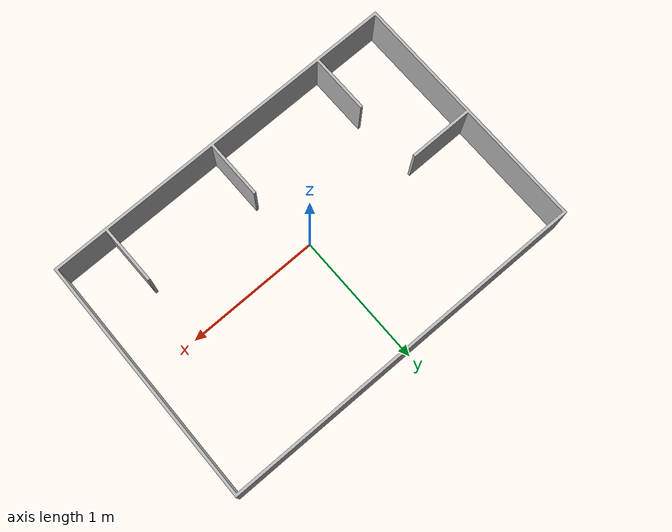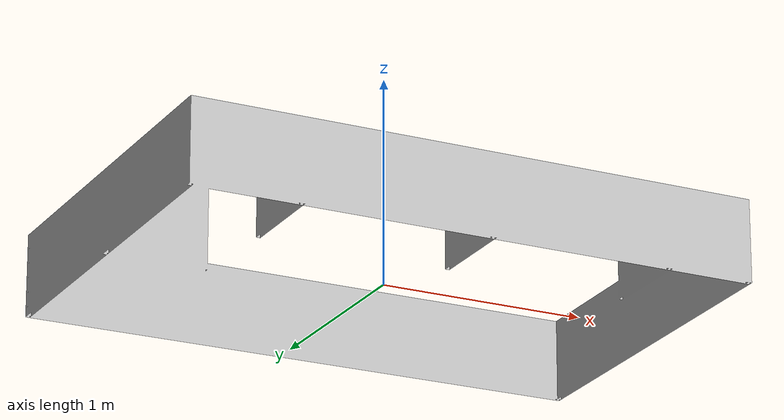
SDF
<?xml version='1.0'?>
<sdf version='1.6'>
  <model name='botbox_env'>
    <link name='link_1'>
         <visual name='visual'>
        <pose frame=''>0 0 0 0 -0 0</pose>
        <geometry>
          <mesh>
            <uri>model://botbox_env/meshes/botbox_env.dae</uri>
            <scale>1.0 1.0 1.0</scale>
          </mesh>
        </geometry>
        <cast_shadows>0</cast_shadows>
        <transparency>0</transparency>
      </visual>
      <collision name='collision'>
        <laser_retro>0</laser_retro>
        <max_contacts>10</max_contacts>
        <pose frame=''>0 0 0 0 -0 0</pose>
        <geometry>
          <mesh>
            <uri>model://botbox_env/meshes/botbox_env_col.stl</uri>
            <scale>1.0 1.0 1.0</scale>
          </mesh>
        </geometry>
     </collision>
    </link>

    <static>1</static>
    <allow_auto_disable>1</allow_auto_disable>
  </model>
</sdf>
